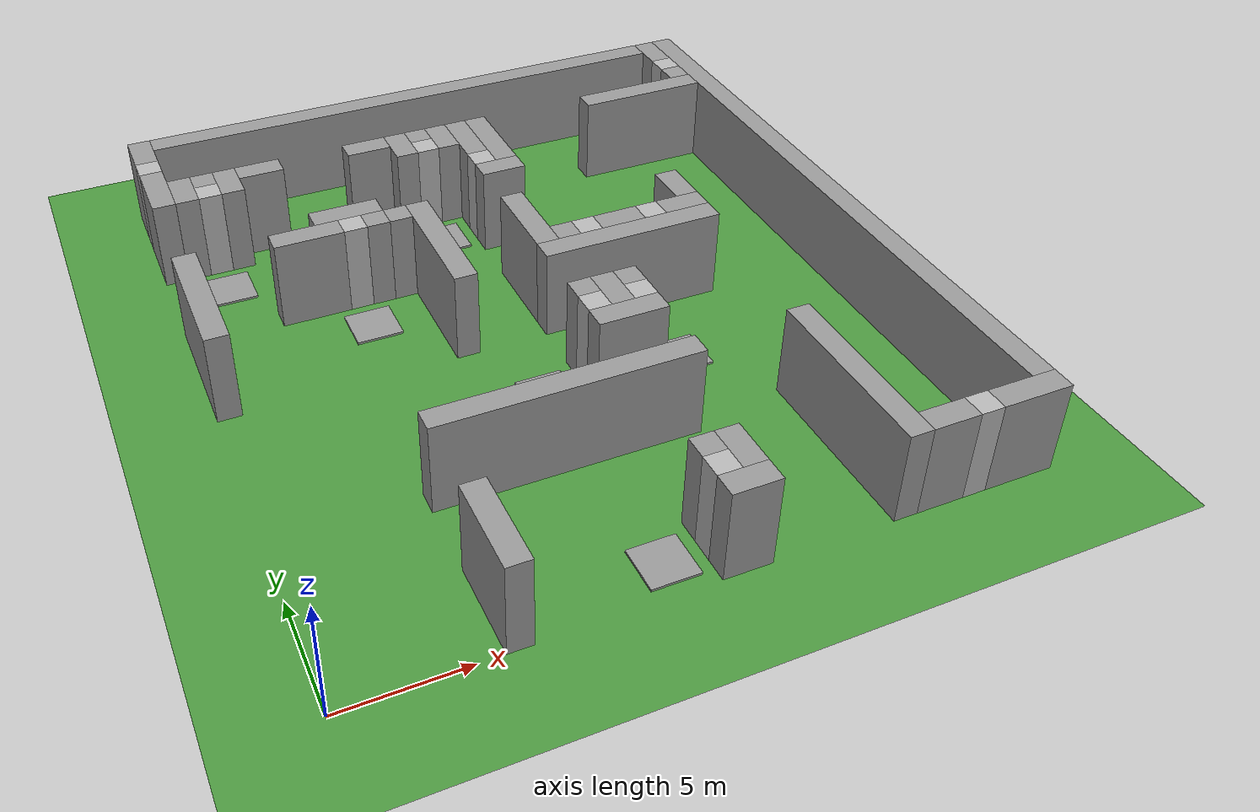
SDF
<sdf version="1.6">
 <world name="default">
  <light name="sun" type="directional">
   <pose>0 0 10 0 -0 0</pose>
   <diffuse>0.8 0.8 0.8 1</diffuse>
   <specular>0.1 0.1 0.1 1</specular>
   <attenuation>
    <range>1000</range>
    <constant>0.9</constant>
    <linear>0.01</linear>
    <quadratic>0.001</quadratic>
   </attenuation>
   <direction>-0.5 0.5 -1</direction>
  </light>
  <model name="ground_plane">
   <static>1</static>
   <link name="link">
    <collision name="collision">
     <geometry><plane><normal>0 0 1</normal><size>100 100</size></plane></geometry>
     <surface><friction><ode><mu>100</mu><mu2>50</mu2></ode></friction></surface>
    </collision>
    <visual name="visual">
     <cast_shadows>0</cast_shadows>
     <geometry><plane><normal>0 0 1</normal><size>100 100</size></plane></geometry>
     <material>
      <script><uri>file://media/materials/scripts/gazebo.material</uri><name>Gazebo/Grass</name></script>
     </material>
    </visual>
   </link>
  </model>
  <gravity>0 0 -9.8</gravity>
  <magnetic_field>6e-06 2.3e-05 -4.2e-05</magnetic_field>
  <atmosphere type="adiabatic"/>
  <physics name="default_physics" default="0" type="ode">
   <max_step_size>0.004</max_step_size>
   <real_time_factor>1</real_time_factor>
   <real_time_update_rate>250</real_time_update_rate>
  </physics>
  <scene><ambient>0.4 0.4 0.4 1</ambient><background>0.7 0.7 0.7 1</background><shadows>1</shadows></scene>
  <spherical_coordinates>
   <surface_model>EARTH_WGS84</surface_model>
   <latitude_deg>0</latitude_deg>
   <longitude_deg>0</longitude_deg>
   <elevation>0</elevation>
   <heading_deg>0</heading_deg>
  </spherical_coordinates>
  <model name="wall">
   <pose>6.500000 2.000000 2 0 0 0</pose>
   <static>1</static>
   <link name="wall-link">
    <collision name="collision"><geometry><box><size>1 4 4</size></box></geometry></collision>
    <visual name="visual">
     <geometry><box><size>1 4 4</size></box></geometry>
     <material>
      <script><name>Gazebo/Grey</name><uri>file://media/materials/scripts/gazebo.material</uri></script>
     </material>
    </visual>
    <gravity>0</gravity>
   </link>
  </model>
  <model name="wall">
   <pose>15.000000 0.500000 2 0 0 0</pose>
   <static>1</static>
   <link name="wall-link">
    <collision name="collision"><geometry><box><size>2 1 4</size></box></geometry></collision>
    <visual name="visual">
     <geometry><box><size>2 1 4</size></box></geometry>
     <material>
      <script><name>Gazebo/Grey</name><uri>file://media/materials/scripts/gazebo.material</uri></script>
     </material>
    </visual>
    <gravity>0</gravity>
   </link>
  </model>
  <model name="wall">
   <pose>21.500000 4.000000 2 0 0 0</pose>
   <static>1</static>
   <link name="wall-link">
    <collision name="collision"><geometry><box><size>1 8 4</size></box></geometry></collision>
    <visual name="visual">
     <geometry><box><size>1 8 4</size></box></geometry>
     <material>
      <script><name>Gazebo/Grey</name><uri>file://media/materials/scripts/gazebo.material</uri></script>
     </material>
    </visual>
    <gravity>0</gravity>
   </link>
  </model>
  <model name="wall">
   <pose>23.000000 0.500000 2 0 0 0</pose>
   <static>1</static>
   <link name="wall-link">
    <collision name="collision"><geometry><box><size>2 1 4</size></box></geometry></collision>
    <visual name="visual">
     <geometry><box><size>2 1 4</size></box></geometry>
     <material>
      <script><name>Gazebo/Grey</name><uri>file://media/materials/scripts/gazebo.material</uri></script>
     </material>
    </visual>
    <gravity>0</gravity>
   </link>
  </model>
  <model name="wall">
   <pose>26.500000 0.500000 2 0 0 0</pose>
   <static>1</static>
   <link name="wall-link">
    <collision name="collision"><geometry><box><size>3 1 4</size></box></geometry></collision>
    <visual name="visual">
     <geometry><box><size>3 1 4</size></box></geometry>
     <material>
      <script><name>Gazebo/Grey</name><uri>file://media/materials/scripts/gazebo.material</uri></script>
     </material>
    </visual>
    <gravity>0</gravity>
   </link>
  </model>
  <model name="wall">
   <pose>15.500000 2.000000 2 0 0 0</pose>
   <static>1</static>
   <link name="wall-link">
    <collision name="collision"><geometry><box><size>1 2 4</size></box></geometry></collision>
    <visual name="visual">
     <geometry><box><size>1 2 4</size></box></geometry>
     <material>
      <script><name>Gazebo/Grey</name><uri>file://media/materials/scripts/gazebo.material</uri></script>
     </material>
    </visual>
    <gravity>0</gravity>
   </link>
  </model>
  <model name="wall">
   <pose>27.500000 16.000000 2 0 0 0</pose>
   <static>1</static>
   <link name="wall-link">
    <collision name="collision"><geometry><box><size>1 30 4</size></box></geometry></collision>
    <visual name="visual">
     <geometry><box><size>1 30 4</size></box></geometry>
     <material>
      <script><name>Gazebo/Grey</name><uri>file://media/materials/scripts/gazebo.material</uri></script>
     </material>
    </visual>
    <gravity>0</gravity>
   </link>
  </model>
  <model name="wall">
   <pose>14.500000 2.500000 2 0 0 0</pose>
   <static>1</static>
   <link name="wall-link">
    <collision name="collision"><geometry><box><size>1 1 4</size></box></geometry></collision>
    <visual name="visual">
     <geometry><box><size>1 1 4</size></box></geometry>
     <material>
      <script><name>Gazebo/Grey</name><uri>file://media/materials/scripts/gazebo.material</uri></script>
     </material>
    </visual>
    <gravity>0</gravity>
   </link>
  </model>
  <model name="wall">
   <pose>11.500000 7.500000 2 0 0 0</pose>
   <static>1</static>
   <link name="wall-link">
    <collision name="collision"><geometry><box><size>11 1 4</size></box></geometry></collision>
    <visual name="visual">
     <geometry><box><size>11 1 4</size></box></geometry>
     <material>
      <script><name>Gazebo/Grey</name><uri>file://media/materials/scripts/gazebo.material</uri></script>
     </material>
    </visual>
    <gravity>0</gravity>
   </link>
  </model>
  <model name="wall">
   <pose>15.500000 10.500000 2 0 0 0</pose>
   <static>1</static>
   <link name="wall-link">
    <collision name="collision"><geometry><box><size>3 1 4</size></box></geometry></collision>
    <visual name="visual">
     <geometry><box><size>3 1 4</size></box></geometry>
     <material>
      <script><name>Gazebo/Grey</name><uri>file://media/materials/scripts/gazebo.material</uri></script>
     </material>
    </visual>
    <gravity>0</gravity>
   </link>
  </model>
  <model name="wall">
   <pose>15.500000 12.000000 2 0 0 0</pose>
   <static>1</static>
   <link name="wall-link">
    <collision name="collision"><geometry><box><size>1 2 4</size></box></geometry></collision>
    <visual name="visual">
     <geometry><box><size>1 2 4</size></box></geometry>
     <material>
      <script><name>Gazebo/Grey</name><uri>file://media/materials/scripts/gazebo.material</uri></script>
     </material>
    </visual>
    <gravity>0</gravity>
   </link>
  </model>
  <model name="wall">
   <pose>14.500000 12.500000 2 0 0 0</pose>
   <static>1</static>
   <link name="wall-link">
    <collision name="collision"><geometry><box><size>1 1 4</size></box></geometry></collision>
    <visual name="visual">
     <geometry><box><size>1 1 4</size></box></geometry>
     <material>
      <script><name>Gazebo/Grey</name><uri>file://media/materials/scripts/gazebo.material</uri></script>
     </material>
    </visual>
    <gravity>0</gravity>
   </link>
  </model>
  <model name="wall">
   <pose>16.500000 12.500000 2 0 0 0</pose>
   <static>1</static>
   <link name="wall-link">
    <collision name="collision"><geometry><box><size>1 1 4</size></box></geometry></collision>
    <visual name="visual">
     <geometry><box><size>1 1 4</size></box></geometry>
     <material>
      <script><name>Gazebo/Grey</name><uri>file://media/materials/scripts/gazebo.material</uri></script>
     </material>
    </visual>
    <gravity>0</gravity>
   </link>
  </model>
  <model name="wall">
   <pose>0.500000 18.000000 2 0 0 0</pose>
   <static>1</static>
   <link name="wall-link">
    <collision name="collision"><geometry><box><size>1 6 4</size></box></geometry></collision>
    <visual name="visual">
     <geometry><box><size>1 6 4</size></box></geometry>
     <material>
      <script><name>Gazebo/Grey</name><uri>file://media/materials/scripts/gazebo.material</uri></script>
     </material>
    </visual>
    <gravity>0</gravity>
   </link>
  </model>
  <model name="wall">
   <pose>10.500000 18.000000 2 0 0 0</pose>
   <static>1</static>
   <link name="wall-link">
    <collision name="collision"><geometry><box><size>1 6 4</size></box></geometry></collision>
    <visual name="visual">
     <geometry><box><size>1 6 4</size></box></geometry>
     <material>
      <script><name>Gazebo/Grey</name><uri>file://media/materials/scripts/gazebo.material</uri></script>
     </material>
    </visual>
    <gravity>0</gravity>
   </link>
  </model>
  <model name="wall">
   <pose>18.000000 15.500000 2 0 0 0</pose>
   <static>1</static>
   <link name="wall-link">
    <collision name="collision"><geometry><box><size>8 1 4</size></box></geometry></collision>
    <visual name="visual">
     <geometry><box><size>8 1 4</size></box></geometry>
     <material>
      <script><name>Gazebo/Grey</name><uri>file://media/materials/scripts/gazebo.material</uri></script>
     </material>
    </visual>
    <gravity>0</gravity>
   </link>
  </model>
  <model name="wall">
   <pose>14.500000 18.000000 2 0 0 0</pose>
   <static>1</static>
   <link name="wall-link">
    <collision name="collision"><geometry><box><size>1 4 4</size></box></geometry></collision>
    <visual name="visual">
     <geometry><box><size>1 4 4</size></box></geometry>
     <material>
      <script><name>Gazebo/Grey</name><uri>file://media/materials/scripts/gazebo.material</uri></script>
     </material>
    </visual>
    <gravity>0</gravity>
   </link>
  </model>
  <model name="wall">
   <pose>15.500000 16.500000 2 0 0 0</pose>
   <static>1</static>
   <link name="wall-link">
    <collision name="collision"><geometry><box><size>1 1 4</size></box></geometry></collision>
    <visual name="visual">
     <geometry><box><size>1 1 4</size></box></geometry>
     <material>
      <script><name>Gazebo/Grey</name><uri>file://media/materials/scripts/gazebo.material</uri></script>
     </material>
    </visual>
    <gravity>0</gravity>
   </link>
  </model>
  <model name="wall">
   <pose>18.000000 16.500000 2 0 0 0</pose>
   <static>1</static>
   <link name="wall-link">
    <collision name="collision"><geometry><box><size>2 1 4</size></box></geometry></collision>
    <visual name="visual">
     <geometry><box><size>2 1 4</size></box></geometry>
     <material>
      <script><name>Gazebo/Grey</name><uri>file://media/materials/scripts/gazebo.material</uri></script>
     </material>
    </visual>
    <gravity>0</gravity>
   </link>
  </model>
  <model name="wall">
   <pose>21.000000 16.500000 2 0 0 0</pose>
   <static>1</static>
   <link name="wall-link">
    <collision name="collision"><geometry><box><size>2 1 4</size></box></geometry></collision>
    <visual name="visual">
     <geometry><box><size>2 1 4</size></box></geometry>
     <material>
      <script><name>Gazebo/Grey</name><uri>file://media/materials/scripts/gazebo.material</uri></script>
     </material>
    </visual>
    <gravity>0</gravity>
   </link>
  </model>
  <model name="wall">
   <pose>21.500000 18.000000 2 0 0 0</pose>
   <static>1</static>
   <link name="wall-link">
    <collision name="collision"><geometry><box><size>1 2 4</size></box></geometry></collision>
    <visual name="visual">
     <geometry><box><size>1 2 4</size></box></geometry>
     <material>
      <script><name>Gazebo/Grey</name><uri>file://media/materials/scripts/gazebo.material</uri></script>
     </material>
    </visual>
    <gravity>0</gravity>
   </link>
  </model>
  <model name="wall">
   <pose>5.500000 20.500000 2 0 0 0</pose>
   <static>1</static>
   <link name="wall-link">
    <collision name="collision"><geometry><box><size>3 1 4</size></box></geometry></collision>
    <visual name="visual">
     <geometry><box><size>3 1 4</size></box></geometry>
     <material>
      <script><name>Gazebo/Grey</name><uri>file://media/materials/scripts/gazebo.material</uri></script>
     </material>
    </visual>
    <gravity>0</gravity>
   </link>
  </model>
  <model name="wall">
   <pose>8.500000 20.500000 2 0 0 0</pose>
   <static>1</static>
   <link name="wall-link">
    <collision name="collision"><geometry><box><size>1 1 4</size></box></geometry></collision>
    <visual name="visual">
     <geometry><box><size>1 1 4</size></box></geometry>
     <material>
      <script><name>Gazebo/Grey</name><uri>file://media/materials/scripts/gazebo.material</uri></script>
     </material>
    </visual>
    <gravity>0</gravity>
   </link>
  </model>
  <model name="wall">
   <pose>9.500000 20.500000 2 0 0 0</pose>
   <static>1</static>
   <link name="wall-link">
    <collision name="collision"><geometry><box><size>1 1 4</size></box></geometry></collision>
    <visual name="visual">
     <geometry><box><size>1 1 4</size></box></geometry>
     <material>
      <script><name>Gazebo/Grey</name><uri>file://media/materials/scripts/gazebo.material</uri></script>
     </material>
    </visual>
    <gravity>0</gravity>
   </link>
  </model>
  <model name="wall">
   <pose>7.500000 21.500000 2 0 0 0</pose>
   <static>1</static>
   <link name="wall-link">
    <collision name="collision"><geometry><box><size>3 1 4</size></box></geometry></collision>
    <visual name="visual">
     <geometry><box><size>3 1 4</size></box></geometry>
     <material>
      <script><name>Gazebo/Grey</name><uri>file://media/materials/scripts/gazebo.material</uri></script>
     </material>
    </visual>
    <gravity>0</gravity>
   </link>
  </model>
  <model name="wall">
   <pose>15.000000 22.500000 2 0 0 0</pose>
   <static>1</static>
   <link name="wall-link">
    <collision name="collision"><geometry><box><size>2 1 4</size></box></geometry></collision>
    <visual name="visual">
     <geometry><box><size>2 1 4</size></box></geometry>
     <material>
      <script><name>Gazebo/Grey</name><uri>file://media/materials/scripts/gazebo.material</uri></script>
     </material>
    </visual>
    <gravity>0</gravity>
   </link>
  </model>
  <model name="wall">
   <pose>15.500000 25.000000 2 0 0 0</pose>
   <static>1</static>
   <link name="wall-link">
    <collision name="collision"><geometry><box><size>1 4 4</size></box></geometry></collision>
    <visual name="visual">
     <geometry><box><size>1 4 4</size></box></geometry>
     <material>
      <script><name>Gazebo/Grey</name><uri>file://media/materials/scripts/gazebo.material</uri></script>
     </material>
    </visual>
    <gravity>0</gravity>
   </link>
  </model>
  <model name="wall">
   <pose>14.500000 25.500000 2 0 0 0</pose>
   <static>1</static>
   <link name="wall-link">
    <collision name="collision"><geometry><box><size>1 3 4</size></box></geometry></collision>
    <visual name="visual">
     <geometry><box><size>1 3 4</size></box></geometry>
     <material>
      <script><name>Gazebo/Grey</name><uri>file://media/materials/scripts/gazebo.material</uri></script>
     </material>
    </visual>
    <gravity>0</gravity>
   </link>
  </model>
  <model name="wall">
   <pose>0.500000 26.500000 2 0 0 0</pose>
   <static>1</static>
   <link name="wall-link">
    <collision name="collision"><geometry><box><size>1 3 4</size></box></geometry></collision>
    <visual name="visual">
     <geometry><box><size>1 3 4</size></box></geometry>
     <material>
      <script><name>Gazebo/Grey</name><uri>file://media/materials/scripts/gazebo.material</uri></script>
     </material>
    </visual>
    <gravity>0</gravity>
   </link>
  </model>
  <model name="wall">
   <pose>1.500000 26.000000 2 0 0 0</pose>
   <static>1</static>
   <link name="wall-link">
    <collision name="collision"><geometry><box><size>1 2 4</size></box></geometry></collision>
    <visual name="visual">
     <geometry><box><size>1 2 4</size></box></geometry>
     <material>
      <script><name>Gazebo/Grey</name><uri>file://media/materials/scripts/gazebo.material</uri></script>
     </material>
    </visual>
    <gravity>0</gravity>
   </link>
  </model>
  <model name="wall">
   <pose>3.500000 26.000000 2 0 0 0</pose>
   <static>1</static>
   <link name="wall-link">
    <collision name="collision"><geometry><box><size>1 2 4</size></box></geometry></collision>
    <visual name="visual">
     <geometry><box><size>1 2 4</size></box></geometry>
     <material>
      <script><name>Gazebo/Grey</name><uri>file://media/materials/scripts/gazebo.material</uri></script>
     </material>
    </visual>
    <gravity>0</gravity>
   </link>
  </model>
  <model name="wall">
   <pose>11.500000 26.000000 2 0 0 0</pose>
   <static>1</static>
   <link name="wall-link">
    <collision name="collision"><geometry><box><size>1 2 4</size></box></geometry></collision>
    <visual name="visual">
     <geometry><box><size>1 2 4</size></box></geometry>
     <material>
      <script><name>Gazebo/Grey</name><uri>file://media/materials/scripts/gazebo.material</uri></script>
     </material>
    </visual>
    <gravity>0</gravity>
   </link>
  </model>
  <model name="wall">
   <pose>13.500000 26.000000 2 0 0 0</pose>
   <static>1</static>
   <link name="wall-link">
    <collision name="collision"><geometry><box><size>1 2 4</size></box></geometry></collision>
    <visual name="visual">
     <geometry><box><size>1 2 4</size></box></geometry>
     <material>
      <script><name>Gazebo/Grey</name><uri>file://media/materials/scripts/gazebo.material</uri></script>
     </material>
    </visual>
    <gravity>0</gravity>
   </link>
  </model>
  <model name="wall">
   <pose>2.500000 26.500000 2 0 0 0</pose>
   <static>1</static>
   <link name="wall-link">
    <collision name="collision"><geometry><box><size>1 1 4</size></box></geometry></collision>
    <visual name="visual">
     <geometry><box><size>1 1 4</size></box></geometry>
     <material>
      <script><name>Gazebo/Grey</name><uri>file://media/materials/scripts/gazebo.material</uri></script>
     </material>
    </visual>
    <gravity>0</gravity>
   </link>
  </model>
  <model name="wall">
   <pose>5.000000 26.500000 2 0 0 0</pose>
   <static>1</static>
   <link name="wall-link">
    <collision name="collision"><geometry><box><size>2 1 4</size></box></geometry></collision>
    <visual name="visual">
     <geometry><box><size>2 1 4</size></box></geometry>
     <material>
      <script><name>Gazebo/Grey</name><uri>file://media/materials/scripts/gazebo.material</uri></script>
     </material>
    </visual>
    <gravity>0</gravity>
   </link>
  </model>
  <model name="wall">
   <pose>10.000000 26.500000 2 0 0 0</pose>
   <static>1</static>
   <link name="wall-link">
    <collision name="collision"><geometry><box><size>2 1 4</size></box></geometry></collision>
    <visual name="visual">
     <geometry><box><size>2 1 4</size></box></geometry>
     <material>
      <script><name>Gazebo/Grey</name><uri>file://media/materials/scripts/gazebo.material</uri></script>
     </material>
    </visual>
    <gravity>0</gravity>
   </link>
  </model>
  <model name="wall">
   <pose>12.500000 26.500000 2 0 0 0</pose>
   <static>1</static>
   <link name="wall-link">
    <collision name="collision"><geometry><box><size>1 1 4</size></box></geometry></collision>
    <visual name="visual">
     <geometry><box><size>1 1 4</size></box></geometry>
     <material>
      <script><name>Gazebo/Grey</name><uri>file://media/materials/scripts/gazebo.material</uri></script>
     </material>
    </visual>
    <gravity>0</gravity>
   </link>
  </model>
  <model name="wall">
   <pose>24.000000 26.500000 2 0 0 0</pose>
   <static>1</static>
   <link name="wall-link">
    <collision name="collision"><geometry><box><size>6 1 4</size></box></geometry></collision>
    <visual name="visual">
     <geometry><box><size>6 1 4</size></box></geometry>
     <material>
      <script><name>Gazebo/Grey</name><uri>file://media/materials/scripts/gazebo.material</uri></script>
     </material>
    </visual>
    <gravity>0</gravity>
   </link>
  </model>
  <model name="wall">
   <pose>26.500000 27.500000 2 0 0 0</pose>
   <static>1</static>
   <link name="wall-link">
    <collision name="collision"><geometry><box><size>1 1 4</size></box></geometry></collision>
    <visual name="visual">
     <geometry><box><size>1 1 4</size></box></geometry>
     <material>
      <script><name>Gazebo/Grey</name><uri>file://media/materials/scripts/gazebo.material</uri></script>
     </material>
    </visual>
    <gravity>0</gravity>
   </link>
  </model>
  <model name="wall">
   <pose>0.500000 30.000000 2 0 0 0</pose>
   <static>1</static>
   <link name="wall-link">
    <collision name="collision"><geometry><box><size>1 2 4</size></box></geometry></collision>
    <visual name="visual">
     <geometry><box><size>1 2 4</size></box></geometry>
     <material>
      <script><name>Gazebo/Grey</name><uri>file://media/materials/scripts/gazebo.material</uri></script>
     </material>
    </visual>
    <gravity>0</gravity>
   </link>
  </model>
  <model name="wall">
   <pose>26.500000 30.000000 2 0 0 0</pose>
   <static>1</static>
   <link name="wall-link">
    <collision name="collision"><geometry><box><size>1 2 4</size></box></geometry></collision>
    <visual name="visual">
     <geometry><box><size>1 2 4</size></box></geometry>
     <material>
      <script><name>Gazebo/Grey</name><uri>file://media/materials/scripts/gazebo.material</uri></script>
     </material>
    </visual>
    <gravity>0</gravity>
   </link>
  </model>
  <model name="wall">
   <pose>13.500000 30.500000 2 0 0 0</pose>
   <static>1</static>
   <link name="wall-link">
    <collision name="collision"><geometry><box><size>25 1 4</size></box></geometry></collision>
    <visual name="visual">
     <geometry><box><size>25 1 4</size></box></geometry>
     <material>
      <script><name>Gazebo/Grey</name><uri>file://media/materials/scripts/gazebo.material</uri></script>
     </material>
    </visual>
    <gravity>0</gravity>
   </link>
  </model>
  <include><uri>model://numberbox7</uri><pose>24.5 0.5 2 0 -0 0</pose></include>
  <model name="goal">
   <pose>12.5 1.5 0.05 0 -0 0</pose>
   <static>1</static>
   <link name="link">
    <collision name="collision"><geometry><box><size>2.0 2.0 0.1</size></box></geometry></collision>
    <visual name="visual">
     <geometry><box><size>2.0 2.0 0.1</size></box></geometry>
     <material>
      <script><name>Gazebo/Grey</name><uri>file://media/materials/scripts/gazebo.material</uri></script>
     </material>
    </visual>
   </link>
  </model>
  <include><uri>model://numberbox1</uri><pose>14.5 1.5 2 0 -0 0</pose></include>
  <model name="goal">
   <pose>24.5 2.5 0.05 0 -0 0</pose>
   <static>1</static>
   <link name="link">
    <collision name="collision"><geometry><box><size>2.0 2.0 0.1</size></box></geometry></collision>
    <visual name="visual">
     <geometry><box><size>2.0 2.0 0.1</size></box></geometry>
     <material>
      <script><name>Gazebo/Grey</name><uri>file://media/materials/scripts/gazebo.material</uri></script>
     </material>
    </visual>
   </link>
  </model>
  <model name="goal">
   <pose>12.5 11.5 0.05 0 -0 0</pose>
   <static>1</static>
   <link name="link">
    <collision name="collision"><geometry><box><size>2.0 2.0 0.1</size></box></geometry></collision>
    <visual name="visual">
     <geometry><box><size>2.0 2.0 0.1</size></box></geometry>
     <material>
      <script><name>Gazebo/Grey</name><uri>file://media/materials/scripts/gazebo.material</uri></script>
     </material>
    </visual>
   </link>
  </model>
  <include><uri>model://numberbox5</uri><pose>14.5 11.5 2 0 -0 0</pose></include>
  <include><uri>model://numberbox8</uri><pose>16.5 11.5 2 0 -0 0</pose></include>
  <model name="goal">
   <pose>18.5 11.5 0.05 0 -0 0</pose>
   <static>1</static>
   <link name="link">
    <collision name="collision"><geometry><box><size>2.0 2.0 0.1</size></box></geometry></collision>
    <visual name="visual">
     <geometry><box><size>2.0 2.0 0.1</size></box></geometry>
     <material>
      <script><name>Gazebo/Grey</name><uri>file://media/materials/scripts/gazebo.material</uri></script>
     </material>
    </visual>
   </link>
  </model>
  <include><uri>model://numberbox2</uri><pose>16.5 16.5 2 0 -0 0</pose></include>
  <include><uri>model://numberbox4</uri><pose>19.5 16.5 2 0 -0 0</pose></include>
  <model name="goal">
   <pose>7.5 18.5 0.05 0 -0 0</pose>
   <static>1</static>
   <link name="link">
    <collision name="collision"><geometry><box><size>2.0 2.0 0.1</size></box></geometry></collision>
    <visual name="visual">
     <geometry><box><size>2.0 2.0 0.1</size></box></geometry>
     <material>
      <script><name>Gazebo/Grey</name><uri>file://media/materials/scripts/gazebo.material</uri></script>
     </material>
    </visual>
   </link>
  </model>
  <model name="goal">
   <pose>16.5 18.5 0.05 0 -0 0</pose>
   <static>1</static>
   <link name="link">
    <collision name="collision"><geometry><box><size>2.0 2.0 0.1</size></box></geometry></collision>
    <visual name="visual">
     <geometry><box><size>2.0 2.0 0.1</size></box></geometry>
     <material>
      <script><name>Gazebo/Grey</name><uri>file://media/materials/scripts/gazebo.material</uri></script>
     </material>
    </visual>
   </link>
  </model>
  <model name="goal">
   <pose>19.5 18.5 0.05 0 -0 0</pose>
   <static>1</static>
   <link name="link">
    <collision name="collision"><geometry><box><size>2.0 2.0 0.1</size></box></geometry></collision>
    <visual name="visual">
     <geometry><box><size>2.0 2.0 0.1</size></box></geometry>
     <material>
      <script><name>Gazebo/Grey</name><uri>file://media/materials/scripts/gazebo.material</uri></script>
     </material>
    </visual>
   </link>
  </model>
  <include><uri>model://numberbox1</uri><pose>7.5 20.5 2 0 -0 0</pose></include>
  <model name="goal">
   <pose>2.5 23.5 0.05 0 -0 0</pose>
   <static>1</static>
   <link name="link">
    <collision name="collision"><geometry><box><size>2.0 2.0 0.1</size></box></geometry></collision>
    <visual name="visual">
     <geometry><box><size>2.0 2.0 0.1</size></box></geometry>
     <material>
      <script><name>Gazebo/Grey</name><uri>file://media/materials/scripts/gazebo.material</uri></script>
     </material>
    </visual>
   </link>
  </model>
  <model name="goal">
   <pose>12.5 23.5 0.05 0 -0 0</pose>
   <static>1</static>
   <link name="link">
    <collision name="collision"><geometry><box><size>2.0 2.0 0.1</size></box></geometry></collision>
    <visual name="visual">
     <geometry><box><size>2.0 2.0 0.1</size></box></geometry>
     <material>
      <script><name>Gazebo/Grey</name><uri>file://media/materials/scripts/gazebo.material</uri></script>
     </material>
    </visual>
   </link>
  </model>
  <include><uri>model://numberbox9</uri><pose>14.5 23.5 2 0 -0 0</pose></include>
  <include><uri>model://numberbox3</uri><pose>2.5 25.5 2 0 -0 0</pose></include>
  <include><uri>model://numberbox7</uri><pose>12.5 25.5 2 0 -0 0</pose></include>
  <include><uri>model://numberbox6</uri><pose>0.5 28.5 2 0 -0 0</pose></include>
  <model name="goal">
   <pose>2.5 28.5 0.05 0 -0 0</pose>
   <static>1</static>
   <link name="link">
    <collision name="collision"><geometry><box><size>2.0 2.0 0.1</size></box></geometry></collision>
    <visual name="visual">
     <geometry><box><size>2.0 2.0 0.1</size></box></geometry>
     <material>
      <script><name>Gazebo/Grey</name><uri>file://media/materials/scripts/gazebo.material</uri></script>
     </material>
    </visual>
   </link>
  </model>
  <model name="goal">
   <pose>24.5 28.5 0.05 0 -0 0</pose>
   <static>1</static>
   <link name="link">
    <collision name="collision"><geometry><box><size>2.0 2.0 0.1</size></box></geometry></collision>
    <visual name="visual">
     <geometry><box><size>2.0 2.0 0.1</size></box></geometry>
     <material>
      <script><name>Gazebo/Grey</name><uri>file://media/materials/scripts/gazebo.material</uri></script>
     </material>
    </visual>
   </link>
  </model>
  <include><uri>model://numberbox1</uri><pose>26.5 28.5 2 0 -0 0</pose></include>
 </world>
</sdf>

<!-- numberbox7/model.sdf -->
<sdf version="1.5">
  <model name="box">
    <static>false</static>
    <link name="base">
      <inertial>
        <mass>1</mass>
        <inertia>
          <ixx>0.166667</ixx>
          <ixy>0</ixy>
          <ixz>0</ixz>
          <iyy>0.166667</iyy>
          <iyz>0</iyz>
          <izz>0.166667</izz>
        </inertia>
      </inertial>
      <collision name="collision">
        <geometry>
            <box>
                <size>1 1 4</size>
            </box>
        </geometry>
      </collision>
      <visual name="visual">
        <geometry>
          <mesh>
            <uri>model://numberbox/meshes/number7.dae</uri>
          </mesh>
        </geometry>
      </visual>
    </link>
  </model>
</sdf>

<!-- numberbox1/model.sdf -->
<sdf version="1.5">
  <model name="box">
    <static>false</static>
    <link name="base">
      <inertial>
        <mass>1</mass>
        <inertia>
          <ixx>0.166667</ixx>
          <ixy>0</ixy>
          <ixz>0</ixz>
          <iyy>0.166667</iyy>
          <iyz>0</iyz>
          <izz>0.166667</izz>
        </inertia>
      </inertial>
      <collision name="collision">
        <geometry>
            <box>
                <size>1 1 4</size>
            </box>
        </geometry>
      </collision>
      <visual name="visual">
        <geometry>
          <mesh>
            <uri>model://numberbox/meshes/number1.dae</uri>
          </mesh>
        </geometry>
      </visual>
    </link>
  </model>
</sdf>

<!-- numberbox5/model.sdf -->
<sdf version="1.5">
  <model name="box">
    <static>false</static>
    <link name="base">
      <inertial>
        <mass>1</mass>
        <inertia>
          <ixx>0.166667</ixx>
          <ixy>0</ixy>
          <ixz>0</ixz>
          <iyy>0.166667</iyy>
          <iyz>0</iyz>
          <izz>0.166667</izz>
        </inertia>
      </inertial>
      <collision name="collision">
        <geometry>
            <box>
                <size>1 1 4</size>
            </box>
        </geometry>
      </collision>
      <visual name="visual">
        <geometry>
          <mesh>
            <uri>model://numberbox/meshes/number5.dae</uri>
          </mesh>
        </geometry>
      </visual>
    </link>
  </model>
</sdf>

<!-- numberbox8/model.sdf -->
<sdf version="1.5">
  <model name="box">
    <static>false</static>
    <link name="base">
      <inertial>
        <mass>1</mass>
        <inertia>
          <ixx>0.166667</ixx>
          <ixy>0</ixy>
          <ixz>0</ixz>
          <iyy>0.166667</iyy>
          <iyz>0</iyz>
          <izz>0.166667</izz>
        </inertia>
      </inertial>
      <collision name="collision">
        <geometry>
            <box>
                <size>1 1 4</size>
            </box>
        </geometry>
      </collision>
      <visual name="visual">
        <geometry>
          <mesh>
            <uri>model://numberbox/meshes/number8.dae</uri>
          </mesh>
        </geometry>
      </visual>
    </link>
  </model>
</sdf>

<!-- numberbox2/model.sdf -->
<sdf version="1.5">
  <model name="box">
    <static>false</static>
    <link name="base">
      <inertial>
        <mass>1</mass>
        <inertia>
          <ixx>0.166667</ixx>
          <ixy>0</ixy>
          <ixz>0</ixz>
          <iyy>0.166667</iyy>
          <iyz>0</iyz>
          <izz>0.166667</izz>
        </inertia>
      </inertial>
      <collision name="collision">
        <geometry>
            <box>
                <size>1 1 4</size>
            </box>
        </geometry>
      </collision>
      <visual name="visual">
        <geometry>
          <mesh>
            <uri>model://numberbox/meshes/number2.dae</uri>
          </mesh>
        </geometry>
      </visual>
    </link>
  </model>
</sdf>

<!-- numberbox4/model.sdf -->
<sdf version="1.5">
  <model name="box">
    <static>false</static>
    <link name="base">
      <inertial>
        <mass>1</mass>
        <inertia>
          <ixx>0.166667</ixx>
          <ixy>0</ixy>
          <ixz>0</ixz>
          <iyy>0.166667</iyy>
          <iyz>0</iyz>
          <izz>0.166667</izz>
        </inertia>
      </inertial>
      <collision name="collision">
        <geometry>
            <box>
                <size>1 1 4</size>
            </box>
        </geometry>
      </collision>
      <visual name="visual">
        <geometry>
          <mesh>
            <uri>model://numberbox/meshes/number4.dae</uri>
          </mesh>
        </geometry>
      </visual>
    </link>
  </model>
</sdf>

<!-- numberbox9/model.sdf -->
<sdf version="1.5">
  <model name="box">
    <static>false</static>
    <link name="base">
      <inertial>
        <mass>1</mass>
        <inertia>
          <ixx>0.166667</ixx>
          <ixy>0</ixy>
          <ixz>0</ixz>
          <iyy>0.166667</iyy>
          <iyz>0</iyz>
          <izz>0.166667</izz>
        </inertia>
      </inertial>
      <collision name="collision">
        <geometry>
            <box>
                <size>1 1 4</size>
            </box>
        </geometry>
      </collision>
      <visual name="visual">
        <geometry>
          <mesh>
            <uri>model://numberbox/meshes/number9.dae</uri>
          </mesh>
        </geometry>
      </visual>
    </link>
  </model>
</sdf>

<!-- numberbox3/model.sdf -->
<sdf version="1.5">
  <model name="box">
    <static>false</static>
    <link name="base">
      <inertial>
        <mass>1</mass>
        <inertia>
          <ixx>0.166667</ixx>
          <ixy>0</ixy>
          <ixz>0</ixz>
          <iyy>0.166667</iyy>
          <iyz>0</iyz>
          <izz>0.166667</izz>
        </inertia>
      </inertial>
      <collision name="collision">
        <geometry>
            <box>
                <size>1 1 4</size>
            </box>
        </geometry>
      </collision>
      <visual name="visual">
        <geometry>
          <mesh>
            <uri>model://numberbox/meshes/number3.dae</uri>
          </mesh>
        </geometry>
      </visual>
    </link>
  </model>
</sdf>

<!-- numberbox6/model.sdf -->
<sdf version="1.5">
  <model name="box">
    <static>false</static>
    <link name="base">
      <inertial>
        <mass>1</mass>
        <inertia>
          <ixx>0.166667</ixx>
          <ixy>0</ixy>
          <ixz>0</ixz>
          <iyy>0.166667</iyy>
          <iyz>0</iyz>
          <izz>0.166667</izz>
        </inertia>
      </inertial>
      <collision name="collision">
        <geometry>
            <box>
                <size>1 1 4</size>
            </box>
        </geometry>
      </collision>
      <visual name="visual">
        <geometry>
          <mesh>
            <uri>model://numberbox/meshes/number6.dae</uri>
          </mesh>
        </geometry>
      </visual>
    </link>
  </model>
</sdf>
